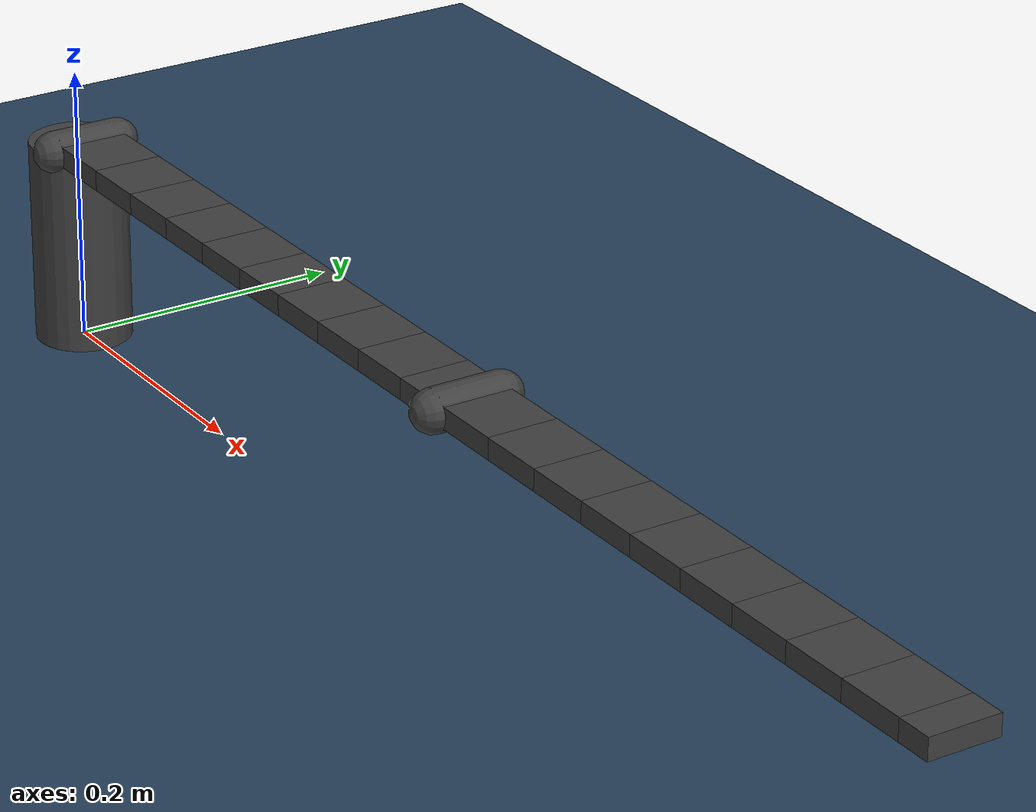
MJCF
<mujoco model="flexible_arm">
  <compiler angle="radian"/>
  <option timestep="0.001" integrator="implicit"/>

  <visual>
    <global azimuth="45" elevation="-15"/>
    <headlight ambient="0.3 0.3 0.3" diffuse="0.6 0.6 0.6" specular="0 0 0"/>
    <rgba haze="0.15 0.25 0.35 1"/>
  </visual>

  <statistic meansize="0.0269565" extent="2.23733" center="0 0 0"/>

   <asset>
    <texture type="skybox" builtin="gradient" rgb1="0.3 0.5 0.7"
        rgb2="0 0 0" width="512" height="3072"/>
    <texture type="2d" name="groundplane" builtin="checker" mark="edge" rgb1="0.2 0.3 0.4"
        rgb2="0.1 0.2 0.3" markrgb="0.8 0.8 0.8" width="300" height="300"/>
    <material name="groundplane" texture="groundplane" texuniform="true"
        texrepeat="5 5" reflectance="0.2"/>
    <material name="dark_grey" rgba="0.25 0.25 0.25 1"/>
   </asset>

  <worldbody>
    <geom name="floor" type="plane" pos="0 0 0" size="0 0 0.05" material="groundplane"/>
    <light pos="0 0 1.5" dir="0 0 -1" directional="true"/>

    <body name="link1">
      <inertial pos="0 0 0.12" quat="0.5 0.5 -0.5 0.5" mass="2" diaginertia="0.01125 0.0061 0.0061"/>
      <joint name="active_joint1" pos="0 0 0" axis="0 0 1" range="-3.14159 3.14159"/>
      <geom size="0.035 0.075" pos="0 0 0.075" type="cylinder" material="dark_grey"/>

      <body name="virtual_link2_1" pos="0 0 0.15" quat="0.707388 0.706825 0 0">
        <inertial pos="0.0125 0 0" quat="0.707107 0 0 0.707107" mass="0.019675" diaginertia="5.1237e-06 4.10552e-06 1.0313e-06"/>
        <joint name="active_joint2" pos="0 0 0" axis="0 0 1" range="-3.14159 3.14159"/>
        <geom size="0.015 0.025" pos="0.0125 0 0" type="capsule" material="dark_grey"/>
        <body name="virtual_link2_2" pos="0.025 0 0">
          <inertial pos="0.025 0 0" quat="0.707107 0 0 0.707107" mass="0.03935" diaginertia="1.63958e-05 8.21103e-06 8.21103e-06"/>
          <joint name="passive_joint1" pos="0 0 0" axis="0 0 1" stiffness="30" damping="0.5674" range="-3.14159 3.14159"/>
          <geom size="0.025 0.0075 0.025" pos="0.025 0 0" type="box" material="dark_grey"/>
          <body name="virtual_link2_3" pos="0.05 0 0">
            <inertial pos="0.025 0 0" quat="0.707107 0 0 0.707107" mass="0.03935" diaginertia="1.63958e-05 8.21103e-06 8.21103e-06"/>
            <joint name="passive_joint2" pos="0 0 0" axis="0 0 1" stiffness="30" damping="0.5674" range="-3.14159 3.14159"/>
            <geom size="0.025 0.0075 0.025" pos="0.025 0 0" type="box" material="dark_grey"/>
            <body name="virtual_link2_4" pos="0.05 0 0">
              <inertial pos="0.025 0 0" quat="0.707107 0 0 0.707107" mass="0.03935" diaginertia="1.63958e-05 8.21103e-06 8.21103e-06"/>
              <joint name="passive_joint3" pos="0 0 0" axis="0 0 1" stiffness="30" damping="0.5674" range="-3.14159 3.14159"/>
              <geom size="0.025 0.0075 0.025" pos="0.025 0 0" type="box" material="dark_grey"/>
              <body name="virtual_link2_5" pos="0.05 0 0">
                <inertial pos="0.025 0 0" quat="0.707107 0 0 0.707107" mass="0.03935" diaginertia="1.63958e-05 8.21103e-06 8.21103e-06"/>
                <joint name="passive_joint4" pos="0 0 0" axis="0 0 1" stiffness="30" damping="0.5674" range="-3.14159 3.14159"/>
                <geom size="0.025 0.0075 0.025" pos="0.025 0 0" type="box" material="dark_grey"/>
                <body name="virtual_link2_6" pos="0.05 0 0">
                  <inertial pos="0.025 0 0" quat="0.707107 0 0 0.707107" mass="0.03935" diaginertia="1.63958e-05 8.21103e-06 8.21103e-06"/>
                  <joint name="passive_joint5" pos="0 0 0" axis="0 0 1" stiffness="30" damping="0.5674" range="-3.14159 3.14159"/>
                  <geom size="0.025 0.0075 0.025" pos="0.025 0 0" type="box" material="dark_grey"/>
                  <body name="virtual_link2_7" pos="0.05 0 0">
                    <inertial pos="0.025 0 0" quat="0.707107 0 0 0.707107" mass="0.03935" diaginertia="1.63958e-05 8.21103e-06 8.21103e-06"/>
                    <joint name="passive_joint6" pos="0 0 0" axis="0 0 1" stiffness="30" damping="0.5674" range="-3.14159 3.14159"/>
                    <geom size="0.025 0.0075 0.025" pos="0.025 0 0" type="box" material="dark_grey"/>
                    <body name="virtual_link2_8" pos="0.05 0 0">
                      <inertial pos="0.025 0 0" quat="0.707107 0 0 0.707107" mass="0.03935" diaginertia="1.63958e-05 8.21103e-06 8.21103e-06"/>
                      <joint name="passive_joint7" pos="0 0 0" axis="0 0 1" stiffness="30" damping="0.5674" range="-3.14159 3.14159"/>
                      <geom size="0.025 0.0075 0.025" pos="0.025 0 0" type="box" material="dark_grey"/>
                      <body name="virtual_link2_9" pos="0.05 0 0">
                        <inertial pos="0.025 0 0" quat="0.707107 0 0 0.707107" mass="0.03935" diaginertia="1.63958e-05 8.21103e-06 8.21103e-06"/>
                        <joint name="passive_joint8" pos="0 0 0" axis="0 0 1" stiffness="30" damping="0.5674" range="-3.14159 3.14159"/>
                        <geom size="0.025 0.0075 0.025" pos="0.025 0 0" type="box" material="dark_grey"/>
                        <body name="virtual_link2_10" pos="0.05 0 0">
                          <inertial pos="0.025 0 0" quat="0.707107 0 0 0.707107" mass="0.03935" diaginertia="1.63958e-05 8.21103e-06 8.21103e-06"/>
                          <joint name="passive_joint9" pos="0 0 0" axis="0 0 1" stiffness="30" damping="0.5674" range="-3.14159 3.14159"/>
                          <geom size="0.025 0.0075 0.025" pos="0.025 0 0" type="box" material="dark_grey"/>
                          <body name="virtual_link2_11" pos="0.05 0 0">
                            <inertial pos="0.0125 0 0" quat="0.707107 0 0 0.707107" mass="0.019675" diaginertia="5.1237e-06 4.10552e-06 1.0313e-06"/>
                            <joint name="passive_joint10" pos="0 0 0" axis="0 0 1" stiffness="30" damping="0.5674" range="-3.14159 3.14159"/>
                            <geom size="0.0125 0.0075 0.025" pos="0.0125 0 0" type="box" material="dark_grey"/>

                            <body name="virtual_link3_1" pos="0.025 0 0">
                              <inertial pos="0.0125 0 0" quat="0.707107 0 0 0.707107" mass="0.019675" diaginertia="5.1237e-06 4.10552e-06 1.0313e-06"/>
                              <joint name="active_joint3" pos="0 0 0" axis="0 0 1" range="-3.14159 3.14159"/>
                              <geom size="0.015 0.025" pos="0.0125 0 0" type="capsule" material="dark_grey"/>
                              <body name="virtual_link3_2" pos="0.025 0 0">
                                <inertial pos="0.025 0 0" quat="0.707107 0 0 0.707107" mass="0.03935" diaginertia="1.63958e-05 8.21103e-06 8.21103e-06"/>
                                <joint name="passive_joint3_1" pos="0 0 0" axis="0 0 1" stiffness="30" damping="0.5674" range="-3.14159 3.14159"/>
                                <geom size="0.025 0.0075 0.025" pos="0.025 0 0" type="box" material="dark_grey"/>
                                <body name="virtual_link3_3" pos="0.05 0 0">
                                  <inertial pos="0.025 0 0" quat="0.707107 0 0 0.707107" mass="0.03935" diaginertia="1.63958e-05 8.21103e-06 8.21103e-06"/>
                                  <joint name="passive_joint3_2" pos="0 0 0" axis="0 0 1" stiffness="30" damping="0.5674" range="-3.14159 3.14159"/>
                                  <geom size="0.025 0.0075 0.025" pos="0.025 0 0" type="box" material="dark_grey"/>
                                  <body name="virtual_link3_4" pos="0.05 0 0">
                                    <inertial pos="0.025 0 0" quat="0.707107 0 0 0.707107" mass="0.03935" diaginertia="1.63958e-05 8.21103e-06 8.21103e-06"/>
                                    <joint name="passive_joint3_3" pos="0 0 0" axis="0 0 1" stiffness="30" damping="0.5674" range="-3.14159 3.14159"/>
                                    <geom size="0.025 0.0075 0.025" pos="0.025 0 0" type="box" material="dark_grey"/>
                                    <body name="virtual_link3_5" pos="0.05 0 0">
                                      <inertial pos="0.025 0 0" quat="0.707107 0 0 0.707107" mass="0.03935" diaginertia="1.63958e-05 8.21103e-06 8.21103e-06"/>
                                      <joint name="passive_joint3_4" pos="0 0 0" axis="0 0 1" stiffness="30" damping="0.5674" range="-3.14159 3.14159"/>
                                      <geom size="0.025 0.0075 0.025" pos="0.025 0 0" type="box" material="dark_grey"/>
                                      <body name="virtual_link3_6" pos="0.05 0 0">
                                        <inertial pos="0.025 0 0" quat="0.707107 0 0 0.707107" mass="0.03935" diaginertia="1.63958e-05 8.21103e-06 8.21103e-06"/>
                                        <joint name="passive_joint3_5" pos="0 0 0" axis="0 0 1" stiffness="30" damping="0.5674" range="-3.14159 3.14159"/>
                                        <geom size="0.025 0.0075 0.025" pos="0.025 0 0" type="box" material="dark_grey"/>
                                        <body name="virtual_link3_7" pos="0.05 0 0">
                                          <inertial pos="0.025 0 0" quat="0.707107 0 0 0.707107" mass="0.03935" diaginertia="1.63958e-05 8.21103e-06 8.21103e-06"/>
                                          <joint name="passive_joint3_6" pos="0 0 0" axis="0 0 1" stiffness="30" damping="0.5674" range="-3.14159 3.14159"/>
                                          <geom size="0.025 0.0075 0.025" pos="0.025 0 0" type="box" material="dark_grey"/>
                                          <body name="virtual_link3_8" pos="0.05 0 0">
                                            <inertial pos="0.025 0 0" quat="0.707107 0 0 0.707107" mass="0.03935" diaginertia="1.63958e-05 8.21103e-06 8.21103e-06"/>
                                            <joint name="passive_joint3_7" pos="0 0 0" axis="0 0 1" stiffness="30" damping="0.5674" range="-3.14159 3.14159"/>
                                            <geom size="0.025 0.0075 0.025" pos="0.025 0 0" type="box" material="dark_grey"/>
                                            <body name="virtual_link3_9" pos="0.05 0 0">
                                              <inertial pos="0.025 0 0" quat="0.707107 0 0 0.707107" mass="0.03935" diaginertia="1.63958e-05 8.21103e-06 8.21103e-06"/>
                                              <joint name="passive_joint3_8" pos="0 0 0" axis="0 0 1" stiffness="30" damping="0.5674" range="-3.14159 3.14159"/>
                                              <geom size="0.025 0.0075 0.025" pos="0.025 0 0" type="box" material="dark_grey"/>
                                              <body name="virtual_link3_10" pos="0.05 0 0">
                                                <inertial pos="0.025 0 0" quat="0.707107 0 0 0.707107" mass="0.03935" diaginertia="1.63958e-05 8.21103e-06 8.21103e-06"/>
                                                <joint name="passive_joint3_9" pos="0 0 0" axis="0 0 1" stiffness="30" damping="0.5674" range="-3.14159 3.14159"/>
                                                <geom size="0.025 0.0075 0.025" pos="0.025 0 0" type="box" material="dark_grey"/>
                                                <body name="virtual_link3_11" pos="0.05 0 0">
                                                  <inertial pos="0.0125 0 0" quat="0.707107 0 0 0.707107" mass="0.019675" diaginertia="5.1237e-06 4.10552e-06 1.0313e-06"/>
                                                  <joint name="passive_joint3_10" pos="0 0 0" axis="0 0 1" stiffness="30" damping="0.5674" range="-3.14159 3.14159"/>
                                                  <geom size="0.0125 0.0075 0.025" pos="0.0125 0 0" type="box" material="dark_grey"/>
                                                </body>
                                              </body>
                                            </body>
                                          </body>
                                        </body>
                                      </body>
                                    </body>
                                  </body>
                                </body>
                              </body>
                            </body>
                          </body>
                        </body>
                      </body>
                    </body>
                  </body>
                </body>
              </body>
            </body>
          </body>
        </body>
      </body>
    </body>
  </worldbody>
  <actuator>
    <motor name="actuator1" joint="active_joint1" />
    <motor name="actuator2" joint="active_joint2" />
    <motor name="actuator3" joint="active_joint3" />
  </actuator>

</mujoco>
